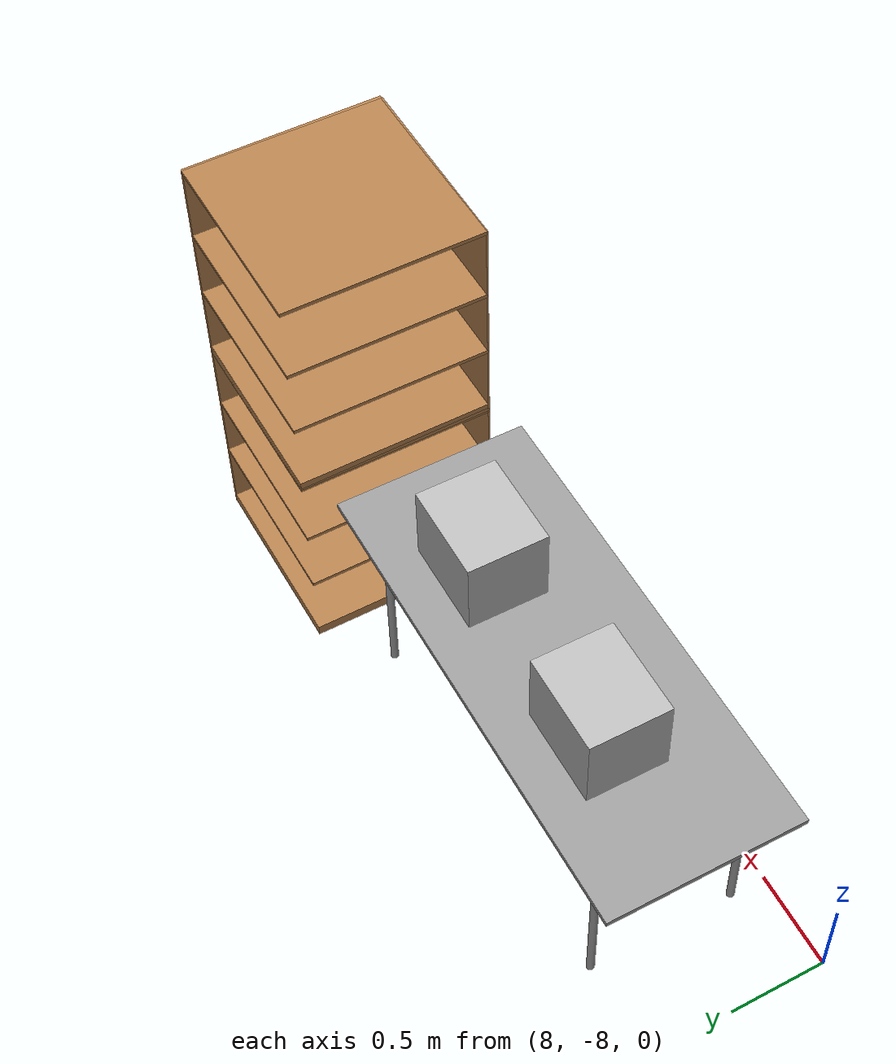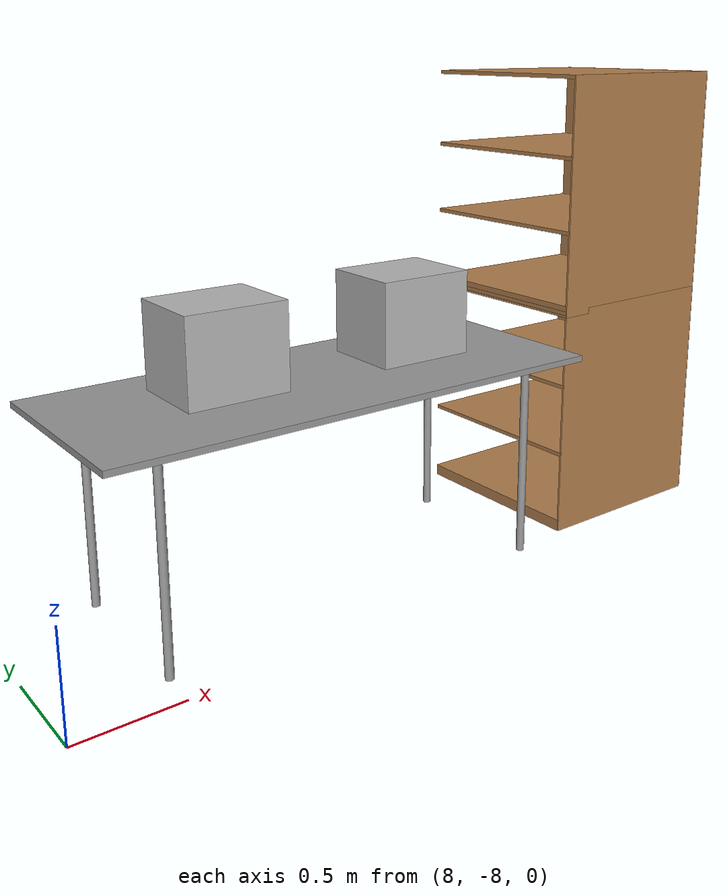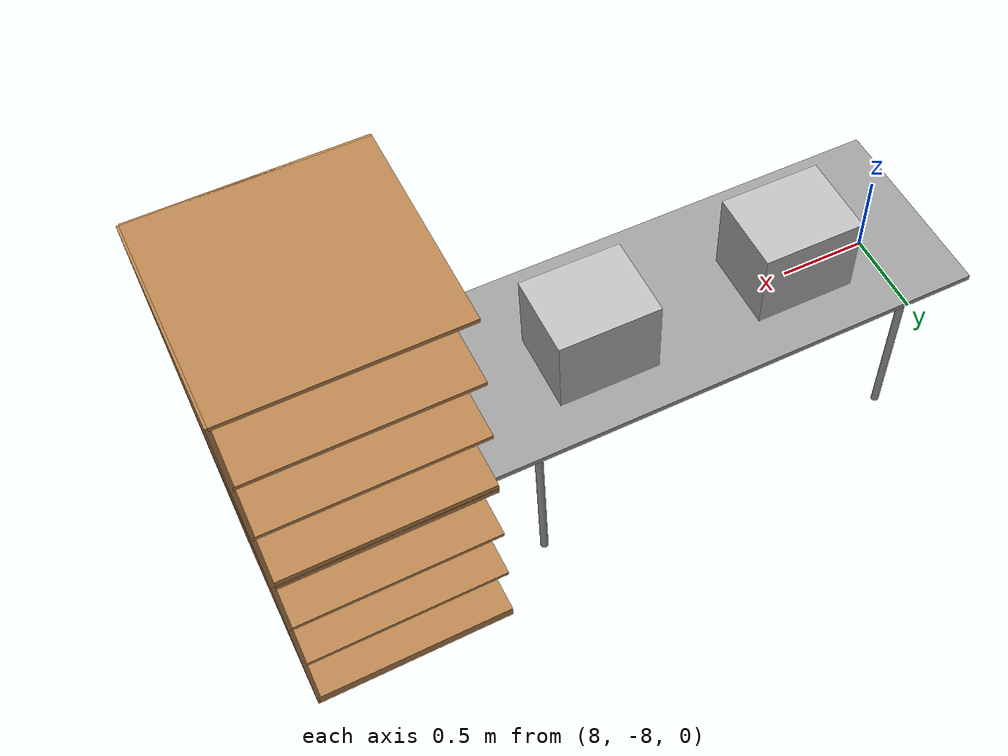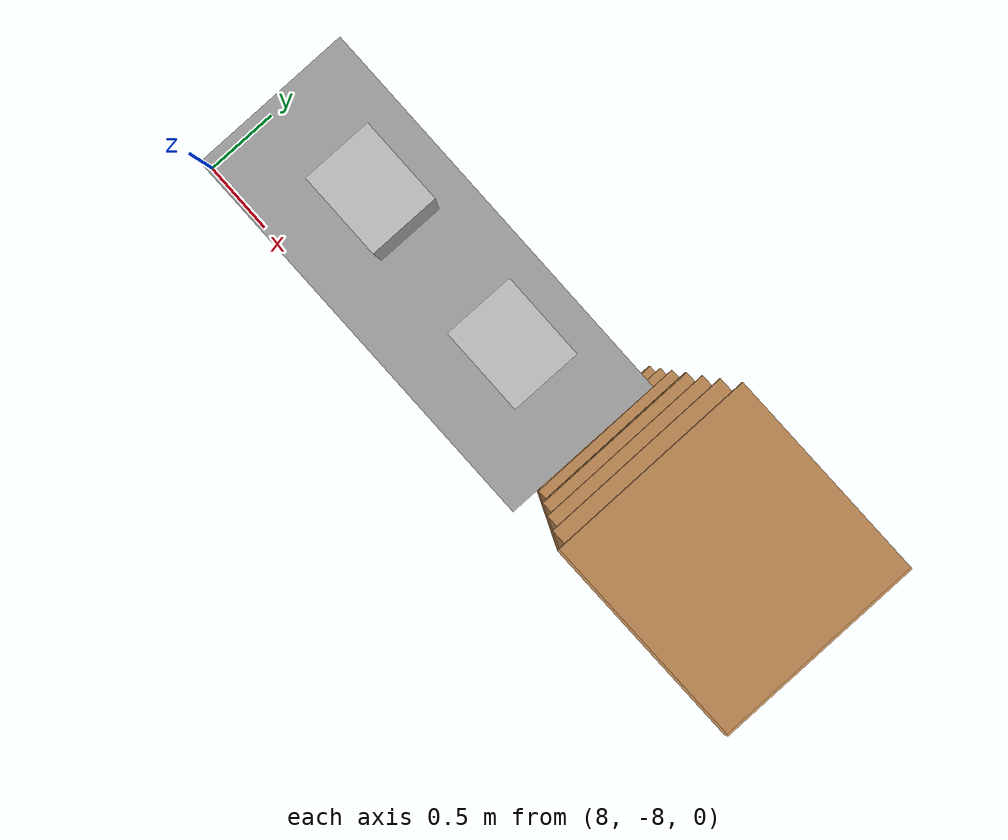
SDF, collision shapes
<sdf version="1.6">
 <model name="erica">
  <model name="3d_printer_0">
   <link name="link">
    <inertial>
     <mass>1</mass>
     <inertia><ixx>1</ixx><ixy>0</ixy><ixz>0</ixz><iyy>1</iyy><iyz>0</iyz><izz>1</izz></inertia>
    </inertial>
    <visual name="visual">
     <geometry><mesh><uri>model://erica/elements/3d_printer/meshes/model.dae</uri></mesh></geometry>
     <material><shader type="vertex"><normal_map>__default__</normal_map></shader></material>
    </visual>
    <collision name="collision">
     <pose>0.27 0.21 0.21 0 -0 0</pose>
     <geometry><box><size>0.5 0.41 0.42</size></box></geometry>
     <surface>
      <friction>
       <ode><mu>1</mu><mu2>1</mu2><fdir1>0 0 0</fdir1><slip1>0</slip1><slip2>0</slip2></ode>
       <torsional>
        <coefficient>1</coefficient>
        <patch_radius>0</patch_radius>
        <surface_radius>0</surface_radius>
        <use_patch_radius>1</use_patch_radius>
        <ode><slip>0</slip></ode>
       </torsional>
      </friction>
      <bounce><restitution_coefficient>0</restitution_coefficient><threshold>1e+06</threshold></bounce>
      <contact>
       <collide_without_contact>0</collide_without_contact>
       <collide_without_contact_bitmask>1</collide_without_contact_bitmask>
       <collide_bitmask>1</collide_bitmask>
       <ode>
        <soft_cfm>0</soft_cfm>
        <soft_erp>0.2</soft_erp>
        <kp>1e+13</kp>
        <kd>1</kd>
        <max_vel>0.01</max_vel>
        <min_depth>0</min_depth>
       </ode>
       <bullet>
        <split_impulse>1</split_impulse>
        <split_impulse_penetration_threshold>-0.01</split_impulse_penetration_threshold>
        <soft_cfm>0</soft_cfm>
        <soft_erp>0.2</soft_erp>
        <kp>1e+13</kp>
        <kd>1</kd>
       </bullet>
      </contact>
     </surface>
    </collision>
   </link>
   <static>1</static>
   <pose>10.3262 -7.13985 1.01878 0 -0 3.13886</pose>
  </model>
  <model name="3d_printer_0_clone">
   <link name="link">
    <inertial>
     <mass>1</mass>
     <inertia><ixx>1</ixx><ixy>0</ixy><ixz>0</ixz><iyy>1</iyy><iyz>0</iyz><izz>1</izz></inertia>
    </inertial>
    <visual name="visual">
     <geometry><mesh><uri>model://erica/elements/3d_printer/meshes/model.dae</uri></mesh></geometry>
     <material><shader type="vertex"><normal_map>__default__</normal_map></shader></material>
    </visual>
    <collision name="collision">
     <pose>0.27 0.21 0.21 0 -0 0</pose>
     <geometry><box><size>0.5 0.41 0.42</size></box></geometry>
     <surface>
      <friction>
       <ode><mu>1</mu><mu2>1</mu2><fdir1>0 0 0</fdir1><slip1>0</slip1><slip2>0</slip2></ode>
       <torsional>
        <coefficient>1</coefficient>
        <patch_radius>0</patch_radius>
        <surface_radius>0</surface_radius>
        <use_patch_radius>1</use_patch_radius>
        <ode><slip>0</slip></ode>
       </torsional>
      </friction>
      <bounce><restitution_coefficient>0</restitution_coefficient><threshold>1e+06</threshold></bounce>
      <contact>
       <collide_without_contact>0</collide_without_contact>
       <collide_without_contact_bitmask>1</collide_without_contact_bitmask>
       <collide_bitmask>1</collide_bitmask>
       <ode>
        <soft_cfm>0</soft_cfm>
        <soft_erp>0.2</soft_erp>
        <kp>1e+13</kp>
        <kd>1</kd>
        <max_vel>0.01</max_vel>
        <min_depth>0</min_depth>
       </ode>
       <bullet>
        <split_impulse>1</split_impulse>
        <split_impulse_penetration_threshold>-0.01</split_impulse_penetration_threshold>
        <soft_cfm>0</soft_cfm>
        <soft_erp>0.2</soft_erp>
        <kp>1e+13</kp>
        <kd>1</kd>
       </bullet>
      </contact>
     </surface>
    </collision>
   </link>
   <static>1</static>
   <pose>9.29256 -7.14981 1.01878 0 -0 3.13886</pose>
  </model>
  <model name="h_bookshelf">
   <link name="link">
    <pose>-1.78639 -0.153003 0 0 -0 0</pose>
    <inertial>
     <mass>1</mass>
     <inertia><ixx>1</ixx><ixy>0</ixy><ixz>0</ixz><iyy>1</iyy><iyz>0</iyz><izz>1</izz></inertia>
    </inertial>
    <visual name="ModelPreview_1::link::visual_10">
     <pose>0 0 0.8 0 -0 0</pose>
     <geometry><box><size>1 1 0.02</size></box></geometry>
     <material>
      <script><uri>file://media/materials/scripts/gazebo.material</uri><name>Gazebo/Wood</name></script>
      <ambient>1 1 1 1</ambient>
      <diffuse>1 1 1 1</diffuse>
      <specular>0.2 0.2 0.2 1</specular>
      <emissive>0 0 0 1</emissive>
      <shader type="vertex"><normal_map>__default__</normal_map></shader>
     </material>
    </visual>
    <visual name="visual1">
     <pose>0 0.5 0.6 0 -0 0</pose>
     <geometry><box><size>1 0.01 1.2</size></box></geometry>
     <material>
      <script><uri>file://media/materials/scripts/gazebo.material</uri><name>Gazebo/Wood</name></script>
      <ambient>1 1 1 1</ambient>
      <diffuse>1 1 1 1</diffuse>
      <specular>0.2 0.2 0.2 1</specular>
      <emissive>0 0 0 1</emissive>
      <shader type="vertex"><normal_map>__default__</normal_map></shader>
     </material>
    </visual>
    <visual name="visual3">
     <pose>-0.5 0 0.6 0 -0 0</pose>
     <geometry><box><size>0.02 1 1.2</size></box></geometry>
     <material>
      <script><uri>file://media/materials/scripts/gazebo.material</uri><name>Gazebo/Wood</name></script>
      <ambient>1 1 1 1</ambient>
      <diffuse>1 1 1 1</diffuse>
      <specular>0.2 0.2 0.2 1</specular>
      <emissive>0 0 0 1</emissive>
      <shader type="vertex"><normal_map>__default__</normal_map></shader>
     </material>
    </visual>
    <visual name="visual5">
     <pose>0 0 1.19 0 -0 0</pose>
     <geometry><box><size>1 1 0.02</size></box></geometry>
     <material>
      <script><uri>file://media/materials/scripts/gazebo.material</uri><name>Gazebo/Wood</name></script>
      <ambient>1 1 1 1</ambient>
      <diffuse>1 1 1 1</diffuse>
      <specular>0.2 0.2 0.2 1</specular>
      <emissive>0 0 0 1</emissive>
      <shader type="vertex"><normal_map>__default__</normal_map></shader>
     </material>
    </visual>
    <visual name="visual4">
     <pose>0 0 0.03 0 -0 0</pose>
     <geometry><box><size>1 1 0.06</size></box></geometry>
     <material>
      <script><uri>file://media/materials/scripts/gazebo.material</uri><name>Gazebo/Wood</name></script>
      <ambient>1 1 1 1</ambient>
      <diffuse>1 1 1 1</diffuse>
      <specular>0.2 0.2 0.2 1</specular>
      <emissive>0 0 0 1</emissive>
      <shader type="vertex"><normal_map>__default__</normal_map></shader>
     </material>
    </visual>
    <visual name="visual6">
     <pose>0 0 0.43 0 -0 0</pose>
     <geometry><box><size>1 1 0.02</size></box></geometry>
     <material>
      <script><uri>file://media/materials/scripts/gazebo.material</uri><name>Gazebo/Wood</name></script>
      <ambient>1 1 1 1</ambient>
      <diffuse>1 1 1 1</diffuse>
      <specular>0.2 0.2 0.2 1</specular>
      <emissive>0 0 0 1</emissive>
      <shader type="vertex"><normal_map>__default__</normal_map></shader>
     </material>
    </visual>
    <visual name="visual7">
     <pose>0 0 0.8 0 -0 0</pose>
     <geometry><box><size>1 1 0.02</size></box></geometry>
     <material>
      <script><uri>file://media/materials/scripts/gazebo.material</uri><name>Gazebo/Wood</name></script>
      <ambient>1 1 1 1</ambient>
      <diffuse>1 1 1 1</diffuse>
      <specular>0.2 0.2 0.2 1</specular>
      <emissive>0 0 0 1</emissive>
      <shader type="vertex"><normal_map>__default__</normal_map></shader>
     </material>
    </visual>
    <collision name="high_shelf">
     <pose>0 0 0.8 0 -0 0</pose>
     <geometry><box><size>1 1 0.02</size></box></geometry>
     <surface>
      <friction>
       <ode><mu>1</mu><mu2>1</mu2><fdir1>0 0 0</fdir1><slip1>0</slip1><slip2>0</slip2></ode>
       <torsional>
        <coefficient>1</coefficient>
        <patch_radius>0</patch_radius>
        <surface_radius>0</surface_radius>
        <use_patch_radius>1</use_patch_radius>
        <ode><slip>0</slip></ode>
       </torsional>
      </friction>
      <bounce><restitution_coefficient>0</restitution_coefficient><threshold>1e+06</threshold></bounce>
      <contact>
       <collide_without_contact>0</collide_without_contact>
       <collide_without_contact_bitmask>1</collide_without_contact_bitmask>
       <collide_bitmask>1</collide_bitmask>
       <ode>
        <soft_cfm>0</soft_cfm>
        <soft_erp>0.2</soft_erp>
        <kp>1e+13</kp>
        <kd>1</kd>
        <max_vel>0.01</max_vel>
        <min_depth>0</min_depth>
       </ode>
       <bullet>
        <split_impulse>1</split_impulse>
        <split_impulse_penetration_threshold>-0.01</split_impulse_penetration_threshold>
        <soft_cfm>0</soft_cfm>
        <soft_erp>0.2</soft_erp>
        <kp>1e+13</kp>
        <kd>1</kd>
       </bullet>
      </contact>
     </surface>
    </collision>
    <collision name="low_shelf">
     <pose>0 0 0.43 0 -0 0</pose>
     <geometry><box><size>1 1 0.02</size></box></geometry>
     <surface>
      <friction>
       <ode><mu>1</mu><mu2>1</mu2><fdir1>0 0 0</fdir1><slip1>0</slip1><slip2>0</slip2></ode>
       <torsional>
        <coefficient>1</coefficient>
        <patch_radius>0</patch_radius>
        <surface_radius>0</surface_radius>
        <use_patch_radius>1</use_patch_radius>
        <ode><slip>0</slip></ode>
       </torsional>
      </friction>
      <bounce><restitution_coefficient>0</restitution_coefficient><threshold>1e+06</threshold></bounce>
      <contact>
       <collide_without_contact>0</collide_without_contact>
       <collide_without_contact_bitmask>1</collide_without_contact_bitmask>
       <collide_bitmask>1</collide_bitmask>
       <ode>
        <soft_cfm>0</soft_cfm>
        <soft_erp>0.2</soft_erp>
        <kp>1e+13</kp>
        <kd>1</kd>
        <max_vel>0.01</max_vel>
        <min_depth>0</min_depth>
       </ode>
       <bullet>
        <split_impulse>1</split_impulse>
        <split_impulse_penetration_threshold>-0.01</split_impulse_penetration_threshold>
        <soft_cfm>0</soft_cfm>
        <soft_erp>0.2</soft_erp>
        <kp>1e+13</kp>
        <kd>1</kd>
       </bullet>
      </contact>
     </surface>
    </collision>
    <collision name="back">
     <pose>0 0.5 0.6 0 -0 0</pose>
     <geometry><box><size>1 0.01 1.2</size></box></geometry>
     <surface>
      <friction>
       <ode><mu>1</mu><mu2>1</mu2><fdir1>0 0 0</fdir1><slip1>0</slip1><slip2>0</slip2></ode>
       <torsional>
        <coefficient>1</coefficient>
        <patch_radius>0</patch_radius>
        <surface_radius>0</surface_radius>
        <use_patch_radius>1</use_patch_radius>
        <ode><slip>0</slip></ode>
       </torsional>
      </friction>
      <bounce><restitution_coefficient>0</restitution_coefficient><threshold>1e+06</threshold></bounce>
      <contact>
       <collide_without_contact>0</collide_without_contact>
       <collide_without_contact_bitmask>1</collide_without_contact_bitmask>
       <collide_bitmask>1</collide_bitmask>
       <ode>
        <soft_cfm>0</soft_cfm>
        <soft_erp>0.2</soft_erp>
        <kp>1e+13</kp>
        <kd>1</kd>
        <max_vel>0.01</max_vel>
        <min_depth>0</min_depth>
       </ode>
       <bullet>
        <split_impulse>1</split_impulse>
        <split_impulse_penetration_threshold>-0.01</split_impulse_penetration_threshold>
        <soft_cfm>0</soft_cfm>
        <soft_erp>0.2</soft_erp>
        <kp>1e+13</kp>
        <kd>1</kd>
       </bullet>
      </contact>
     </surface>
    </collision>
    <collision name="right_side">
     <pose>-0.5 0 0.6 0 -0 0</pose>
     <geometry><box><size>0.02 1 1.2</size></box></geometry>
     <surface>
      <friction>
       <ode><mu>1</mu><mu2>1</mu2><fdir1>0 0 0</fdir1><slip1>0</slip1><slip2>0</slip2></ode>
       <torsional>
        <coefficient>1</coefficient>
        <patch_radius>0</patch_radius>
        <surface_radius>0</surface_radius>
        <use_patch_radius>1</use_patch_radius>
        <ode><slip>0</slip></ode>
       </torsional>
      </friction>
      <bounce><restitution_coefficient>0</restitution_coefficient><threshold>1e+06</threshold></bounce>
      <contact>
       <collide_without_contact>0</collide_without_contact>
       <collide_without_contact_bitmask>1</collide_without_contact_bitmask>
       <collide_bitmask>1</collide_bitmask>
       <ode>
        <soft_cfm>0</soft_cfm>
        <soft_erp>0.2</soft_erp>
        <kp>1e+13</kp>
        <kd>1</kd>
        <max_vel>0.01</max_vel>
        <min_depth>0</min_depth>
       </ode>
       <bullet>
        <split_impulse>1</split_impulse>
        <split_impulse_penetration_threshold>-0.01</split_impulse_penetration_threshold>
        <soft_cfm>0</soft_cfm>
        <soft_erp>0.2</soft_erp>
        <kp>1e+13</kp>
        <kd>1</kd>
       </bullet>
      </contact>
     </surface>
    </collision>
    <collision name="bottom">
     <pose>0 0 0.03 0 -0 0</pose>
     <geometry><box><size>1 1 0.06</size></box></geometry>
     <surface>
      <friction>
       <ode><mu>1</mu><mu2>1</mu2><fdir1>0 0 0</fdir1><slip1>0</slip1><slip2>0</slip2></ode>
       <torsional>
        <coefficient>1</coefficient>
        <patch_radius>0</patch_radius>
        <surface_radius>0</surface_radius>
        <use_patch_radius>1</use_patch_radius>
        <ode><slip>0</slip></ode>
       </torsional>
      </friction>
      <bounce><restitution_coefficient>0</restitution_coefficient><threshold>1e+06</threshold></bounce>
      <contact>
       <collide_without_contact>0</collide_without_contact>
       <collide_without_contact_bitmask>1</collide_without_contact_bitmask>
       <collide_bitmask>1</collide_bitmask>
       <ode>
        <soft_cfm>0</soft_cfm>
        <soft_erp>0.2</soft_erp>
        <kp>1e+13</kp>
        <kd>1</kd>
        <max_vel>0.01</max_vel>
        <min_depth>0</min_depth>
       </ode>
       <bullet>
        <split_impulse>1</split_impulse>
        <split_impulse_penetration_threshold>-0.01</split_impulse_penetration_threshold>
        <soft_cfm>0</soft_cfm>
        <soft_erp>0.2</soft_erp>
        <kp>1e+13</kp>
        <kd>1</kd>
       </bullet>
      </contact>
     </surface>
    </collision>
    <collision name="top">
     <pose>0 0 1.19 0 -0 0</pose>
     <geometry><box><size>1 1 0.02</size></box></geometry>
     <surface>
      <friction>
       <ode><mu>1</mu><mu2>1</mu2><fdir1>0 0 0</fdir1><slip1>0</slip1><slip2>0</slip2></ode>
       <torsional>
        <coefficient>1</coefficient>
        <patch_radius>0</patch_radius>
        <surface_radius>0</surface_radius>
        <use_patch_radius>1</use_patch_radius>
        <ode><slip>0</slip></ode>
       </torsional>
      </friction>
      <bounce><restitution_coefficient>0</restitution_coefficient><threshold>1e+06</threshold></bounce>
      <contact>
       <collide_without_contact>0</collide_without_contact>
       <collide_without_contact_bitmask>1</collide_without_contact_bitmask>
       <collide_bitmask>1</collide_bitmask>
       <ode>
        <soft_cfm>0</soft_cfm>
        <soft_erp>0.2</soft_erp>
        <kp>1e+13</kp>
        <kd>1</kd>
        <max_vel>0.01</max_vel>
        <min_depth>0</min_depth>
       </ode>
       <bullet>
        <split_impulse>1</split_impulse>
        <split_impulse_penetration_threshold>-0.01</split_impulse_penetration_threshold>
        <soft_cfm>0</soft_cfm>
        <soft_erp>0.2</soft_erp>
        <kp>1e+13</kp>
        <kd>1</kd>
       </bullet>
      </contact>
     </surface>
    </collision>
   </link>
   <link name="link_clone">
    <pose>-1.78639 -0.153003 1.16821 0 -0 0</pose>
    <inertial>
     <mass>1</mass>
     <inertia><ixx>1</ixx><ixy>0</ixy><ixz>0</ixz><iyy>1</iyy><iyz>0</iyz><izz>1</izz></inertia>
    </inertial>
    <visual name="visual1">
     <pose>0 0.5 0.6 0 -0 0</pose>
     <geometry><box><size>1 0.01 1.2</size></box></geometry>
     <material>
      <script><uri>file://media/materials/scripts/gazebo.material</uri><name>Gazebo/Wood</name></script>
      <ambient>1 1 1 1</ambient>
      <diffuse>1 1 1 1</diffuse>
      <specular>0.2 0.2 0.2 1</specular>
      <emissive>0 0 0 1</emissive>
      <shader type="vertex"><normal_map>__default__</normal_map></shader>
     </material>
    </visual>
    <visual name="visual4">
     <pose>0 0 0.03 0 -0 0</pose>
     <geometry><box><size>1 1 0.06</size></box></geometry>
     <material>
      <script><uri>file://media/materials/scripts/gazebo.material</uri><name>Gazebo/Wood</name></script>
      <ambient>1 1 1 1</ambient>
      <diffuse>1 1 1 1</diffuse>
      <specular>0.2 0.2 0.2 1</specular>
      <emissive>0 0 0 1</emissive>
      <shader type="vertex"><normal_map>__default__</normal_map></shader>
     </material>
    </visual>
    <visual name="visual_10">
     <pose>0 0 0.8 0 -0 0</pose>
     <geometry><box><size>1 1 0.02</size></box></geometry>
     <material>
      <script><uri>file://media/materials/scripts/gazebo.material</uri><name>Gazebo/Wood</name></script>
      <ambient>1 1 1 1</ambient>
      <diffuse>1 1 1 1</diffuse>
      <specular>0.2 0.2 0.2 1</specular>
      <emissive>0 0 0 1</emissive>
      <shader type="vertex"><normal_map>__default__</normal_map></shader>
     </material>
    </visual>
    <visual name="visual5">
     <pose>0 0 1.19 0 -0 0</pose>
     <geometry><box><size>1 1 0.02</size></box></geometry>
     <material>
      <script><uri>file://media/materials/scripts/gazebo.material</uri><name>Gazebo/Wood</name></script>
      <ambient>1 1 1 1</ambient>
      <diffuse>1 1 1 1</diffuse>
      <specular>0.2 0.2 0.2 1</specular>
      <emissive>0 0 0 1</emissive>
      <shader type="vertex"><normal_map>__default__</normal_map></shader>
     </material>
    </visual>
    <visual name="visual7">
     <pose>0 0 0.8 0 -0 0</pose>
     <geometry><box><size>1 1 0.02</size></box></geometry>
     <material>
      <script><uri>file://media/materials/scripts/gazebo.material</uri><name>Gazebo/Wood</name></script>
      <ambient>1 1 1 1</ambient>
      <diffuse>1 1 1 1</diffuse>
      <specular>0.2 0.2 0.2 1</specular>
      <emissive>0 0 0 1</emissive>
      <shader type="vertex"><normal_map>__default__</normal_map></shader>
     </material>
    </visual>
    <visual name="visual6">
     <pose>0 0 0.43 0 -0 0</pose>
     <geometry><box><size>1 1 0.02</size></box></geometry>
     <material>
      <script><uri>file://media/materials/scripts/gazebo.material</uri><name>Gazebo/Wood</name></script>
      <ambient>1 1 1 1</ambient>
      <diffuse>1 1 1 1</diffuse>
      <specular>0.2 0.2 0.2 1</specular>
      <emissive>0 0 0 1</emissive>
      <shader type="vertex"><normal_map>__default__</normal_map></shader>
     </material>
    </visual>
    <visual name="visual3">
     <pose>-0.5 0 0.6 0 -0 0</pose>
     <geometry><box><size>0.02 1 1.2</size></box></geometry>
     <material>
      <script><uri>file://media/materials/scripts/gazebo.material</uri><name>Gazebo/Wood</name></script>
      <ambient>1 1 1 1</ambient>
      <diffuse>1 1 1 1</diffuse>
      <specular>0.2 0.2 0.2 1</specular>
      <emissive>0 0 0 1</emissive>
      <shader type="vertex"><normal_map>__default__</normal_map></shader>
     </material>
    </visual>
    <collision name="back">
     <pose>0 0.5 0.6 0 -0 0</pose>
     <geometry><box><size>1 0.01 1.2</size></box></geometry>
     <surface>
      <friction>
       <ode><mu>1</mu><mu2>1</mu2><fdir1>0 0 0</fdir1><slip1>0</slip1><slip2>0</slip2></ode>
       <torsional>
        <coefficient>1</coefficient>
        <patch_radius>0</patch_radius>
        <surface_radius>0</surface_radius>
        <use_patch_radius>1</use_patch_radius>
        <ode><slip>0</slip></ode>
       </torsional>
      </friction>
      <bounce><restitution_coefficient>0</restitution_coefficient><threshold>1e+06</threshold></bounce>
      <contact>
       <collide_without_contact>0</collide_without_contact>
       <collide_without_contact_bitmask>1</collide_without_contact_bitmask>
       <collide_bitmask>1</collide_bitmask>
       <ode>
        <soft_cfm>0</soft_cfm>
        <soft_erp>0.2</soft_erp>
        <kp>1e+13</kp>
        <kd>1</kd>
        <max_vel>0.01</max_vel>
        <min_depth>0</min_depth>
       </ode>
       <bullet>
        <split_impulse>1</split_impulse>
        <split_impulse_penetration_threshold>-0.01</split_impulse_penetration_threshold>
        <soft_cfm>0</soft_cfm>
        <soft_erp>0.2</soft_erp>
        <kp>1e+13</kp>
        <kd>1</kd>
       </bullet>
      </contact>
     </surface>
    </collision>
    <collision name="high_shelf">
     <pose>0 0 0.8 0 -0 0</pose>
     <geometry><box><size>1 1 0.02</size></box></geometry>
     <surface>
      <friction>
       <ode><mu>1</mu><mu2>1</mu2><fdir1>0 0 0</fdir1><slip1>0</slip1><slip2>0</slip2></ode>
       <torsional>
        <coefficient>1</coefficient>
        <patch_radius>0</patch_radius>
        <surface_radius>0</surface_radius>
        <use_patch_radius>1</use_patch_radius>
        <ode><slip>0</slip></ode>
       </torsional>
      </friction>
      <bounce><restitution_coefficient>0</restitution_coefficient><threshold>1e+06</threshold></bounce>
      <contact>
       <collide_without_contact>0</collide_without_contact>
       <collide_without_contact_bitmask>1</collide_without_contact_bitmask>
       <collide_bitmask>1</collide_bitmask>
       <ode>
        <soft_cfm>0</soft_cfm>
        <soft_erp>0.2</soft_erp>
        <kp>1e+13</kp>
        <kd>1</kd>
        <max_vel>0.01</max_vel>
        <min_depth>0</min_depth>
       </ode>
       <bullet>
        <split_impulse>1</split_impulse>
        <split_impulse_penetration_threshold>-0.01</split_impulse_penetration_threshold>
        <soft_cfm>0</soft_cfm>
        <soft_erp>0.2</soft_erp>
        <kp>1e+13</kp>
        <kd>1</kd>
       </bullet>
      </contact>
     </surface>
    </collision>
    <collision name="top">
     <pose>0 0 1.19 0 -0 0</pose>
     <geometry><box><size>1 1 0.02</size></box></geometry>
     <surface>
      <friction>
       <ode><mu>1</mu><mu2>1</mu2><fdir1>0 0 0</fdir1><slip1>0</slip1><slip2>0</slip2></ode>
       <torsional>
        <coefficient>1</coefficient>
        <patch_radius>0</patch_radius>
        <surface_radius>0</surface_radius>
        <use_patch_radius>1</use_patch_radius>
        <ode><slip>0</slip></ode>
       </torsional>
      </friction>
      <bounce><restitution_coefficient>0</restitution_coefficient><threshold>1e+06</threshold></bounce>
      <contact>
       <collide_without_contact>0</collide_without_contact>
       <collide_without_contact_bitmask>1</collide_without_contact_bitmask>
       <collide_bitmask>1</collide_bitmask>
       <ode>
        <soft_cfm>0</soft_cfm>
        <soft_erp>0.2</soft_erp>
        <kp>1e+13</kp>
        <kd>1</kd>
        <max_vel>0.01</max_vel>
        <min_depth>0</min_depth>
       </ode>
       <bullet>
        <split_impulse>1</split_impulse>
        <split_impulse_penetration_threshold>-0.01</split_impulse_penetration_threshold>
        <soft_cfm>0</soft_cfm>
        <soft_erp>0.2</soft_erp>
        <kp>1e+13</kp>
        <kd>1</kd>
       </bullet>
      </contact>
     </surface>
    </collision>
    <collision name="low_shelf">
     <pose>0 0 0.43 0 -0 0</pose>
     <geometry><box><size>1 1 0.02</size></box></geometry>
     <surface>
      <friction>
       <ode><mu>1</mu><mu2>1</mu2><fdir1>0 0 0</fdir1><slip1>0</slip1><slip2>0</slip2></ode>
       <torsional>
        <coefficient>1</coefficient>
        <patch_radius>0</patch_radius>
        <surface_radius>0</surface_radius>
        <use_patch_radius>1</use_patch_radius>
        <ode><slip>0</slip></ode>
       </torsional>
      </friction>
      <bounce><restitution_coefficient>0</restitution_coefficient><threshold>1e+06</threshold></bounce>
      <contact>
       <collide_without_contact>0</collide_without_contact>
       <collide_without_contact_bitmask>1</collide_without_contact_bitmask>
       <collide_bitmask>1</collide_bitmask>
       <ode>
        <soft_cfm>0</soft_cfm>
        <soft_erp>0.2</soft_erp>
        <kp>1e+13</kp>
        <kd>1</kd>
        <max_vel>0.01</max_vel>
        <min_depth>0</min_depth>
       </ode>
       <bullet>
        <split_impulse>1</split_impulse>
        <split_impulse_penetration_threshold>-0.01</split_impulse_penetration_threshold>
        <soft_cfm>0</soft_cfm>
        <soft_erp>0.2</soft_erp>
        <kp>1e+13</kp>
        <kd>1</kd>
       </bullet>
      </contact>
     </surface>
    </collision>
    <collision name="right_side">
     <pose>-0.5 0 0.6 0 -0 0</pose>
     <geometry><box><size>0.02 1 1.2</size></box></geometry>
     <surface>
      <friction>
       <ode><mu>1</mu><mu2>1</mu2><fdir1>0 0 0</fdir1><slip1>0</slip1><slip2>0</slip2></ode>
       <torsional>
        <coefficient>1</coefficient>
        <patch_radius>0</patch_radius>
        <surface_radius>0</surface_radius>
        <use_patch_radius>1</use_patch_radius>
        <ode><slip>0</slip></ode>
       </torsional>
      </friction>
      <bounce><restitution_coefficient>0</restitution_coefficient><threshold>1e+06</threshold></bounce>
      <contact>
       <collide_without_contact>0</collide_without_contact>
       <collide_without_contact_bitmask>1</collide_without_contact_bitmask>
       <collide_bitmask>1</collide_bitmask>
       <ode>
        <soft_cfm>0</soft_cfm>
        <soft_erp>0.2</soft_erp>
        <kp>1e+13</kp>
        <kd>1</kd>
        <max_vel>0.01</max_vel>
        <min_depth>0</min_depth>
       </ode>
       <bullet>
        <split_impulse>1</split_impulse>
        <split_impulse_penetration_threshold>-0.01</split_impulse_penetration_threshold>
        <soft_cfm>0</soft_cfm>
        <soft_erp>0.2</soft_erp>
        <kp>1e+13</kp>
        <kd>1</kd>
       </bullet>
      </contact>
     </surface>
    </collision>
    <collision name="bottom">
     <pose>0 0 0.03 0 -0 0</pose>
     <geometry><box><size>1 1 0.06</size></box></geometry>
     <surface>
      <friction>
       <ode><mu>1</mu><mu2>1</mu2><fdir1>0 0 0</fdir1><slip1>0</slip1><slip2>0</slip2></ode>
       <torsional>
        <coefficient>1</coefficient>
        <patch_radius>0</patch_radius>
        <surface_radius>0</surface_radius>
        <use_patch_radius>1</use_patch_radius>
        <ode><slip>0</slip></ode>
       </torsional>
      </friction>
      <bounce><restitution_coefficient>0</restitution_coefficient><threshold>1e+06</threshold></bounce>
      <contact>
       <collide_without_contact>0</collide_without_contact>
       <collide_without_contact_bitmask>1</collide_without_contact_bitmask>
       <collide_bitmask>1</collide_bitmask>
       <ode>
        <soft_cfm>0</soft_cfm>
        <soft_erp>0.2</soft_erp>
        <kp>1e+13</kp>
        <kd>1</kd>
        <max_vel>0.01</max_vel>
        <min_depth>0</min_depth>
       </ode>
       <bullet>
        <split_impulse>1</split_impulse>
        <split_impulse_penetration_threshold>-0.01</split_impulse_penetration_threshold>
        <soft_cfm>0</soft_cfm>
        <soft_erp>0.2</soft_erp>
        <kp>1e+13</kp>
        <kd>1</kd>
       </bullet>
      </contact>
     </surface>
    </collision>
   </link>
   <static>1</static>
   <pose>9.48549 -7.44015 0 0 0 -3.1343</pose>
  </model>
  <model name="h_table2">
   <link name="link">
    <inertial>
     <inertia><ixx>1</ixx><ixy>0</ixy><ixz>0</ixz><iyy>1</iyy><iyz>0</iyz><izz>1</izz></inertia>
     <mass>1</mass>
    </inertial>
    <visual name="back_left_leg">
     <pose>-0.98 0.38 0.5 0 -0 0</pose>
     <geometry><cylinder><radius>0.02</radius><length>1</length></cylinder></geometry>
     <material>
      <script><uri>file://media/materials/scripts/gazebo.material</uri><name>Gazebo/Grey</name></script>
      <ambient>0.3 0.3 0.3 1</ambient>
      <diffuse>0.7 0.7 0.7 1</diffuse>
      <specular>0.01 0.01 0.01 1</specular>
      <emissive>0 0 0 1</emissive>
      <shader type="vertex"><normal_map>__default__</normal_map></shader>
     </material>
    </visual>
    <visual name="front_right_leg">
     <pose>0.98 -0.38 0.5 0 -0 0</pose>
     <geometry><cylinder><radius>0.02</radius><length>1</length></cylinder></geometry>
     <material>
      <script><uri>file://media/materials/scripts/gazebo.material</uri><name>Gazebo/Grey</name></script>
      <ambient>0.3 0.3 0.3 1</ambient>
      <diffuse>0.7 0.7 0.7 1</diffuse>
      <specular>0.01 0.01 0.01 1</specular>
      <emissive>0 0 0 1</emissive>
      <shader type="vertex"><normal_map>__default__</normal_map></shader>
     </material>
    </visual>
    <visual name="front_left_leg">
     <pose>0.98 0.38 0.5 0 -0 0</pose>
     <geometry><cylinder><radius>0.02</radius><length>1</length></cylinder></geometry>
     <material>
      <script><uri>file://media/materials/scripts/gazebo.material</uri><name>Gazebo/Grey</name></script>
      <ambient>0.3 0.3 0.3 1</ambient>
      <diffuse>0.7 0.7 0.7 1</diffuse>
      <specular>0.01 0.01 0.01 1</specular>
      <emissive>0 0 0 1</emissive>
      <shader type="vertex"><normal_map>__default__</normal_map></shader>
     </material>
    </visual>
    <visual name="back_right_leg">
     <pose>-0.98 -0.38 0.5 0 -0 0</pose>
     <geometry><cylinder><radius>0.02</radius><length>1</length></cylinder></geometry>
     <material>
      <script><uri>file://media/materials/scripts/gazebo.material</uri><name>Gazebo/Grey</name></script>
      <ambient>0.3 0.3 0.3 1</ambient>
      <diffuse>0.7 0.7 0.7 1</diffuse>
      <specular>0.01 0.01 0.01 1</specular>
      <emissive>0 0 0 1</emissive>
      <shader type="vertex"><normal_map>__default__</normal_map></shader>
     </material>
    </visual>
    <visual name="visual1">
     <pose>0 0 1 0 -0 0</pose>
     <geometry><box><size>2.5 1 0.04</size></box></geometry>
     <material>
      <script><uri>file://media/materials/scripts/gazebo.material</uri><name>Gazebo/Wood</name></script>
      <ambient>1 1 1 1</ambient>
      <diffuse>1 1 1 1</diffuse>
      <specular>0.2 0.2 0.2 1</specular>
      <emissive>0 0 0 1</emissive>
      <shader type="vertex"><normal_map>__default__</normal_map></shader>
     </material>
    </visual>
    <collision name="back_left_leg">
     <pose>-0.98 0.38 0.5 0 -0 0</pose>
     <geometry><cylinder><radius>0.02</radius><length>1</length></cylinder></geometry>
     <surface>
      <friction>
       <ode><mu>1</mu><mu2>1</mu2><fdir1>0 0 0</fdir1><slip1>0</slip1><slip2>0</slip2></ode>
       <torsional>
        <coefficient>1</coefficient>
        <patch_radius>0</patch_radius>
        <surface_radius>0</surface_radius>
        <use_patch_radius>1</use_patch_radius>
        <ode><slip>0</slip></ode>
       </torsional>
      </friction>
      <bounce><restitution_coefficient>0</restitution_coefficient><threshold>1e+06</threshold></bounce>
      <contact>
       <collide_without_contact>0</collide_without_contact>
       <collide_without_contact_bitmask>1</collide_without_contact_bitmask>
       <collide_bitmask>1</collide_bitmask>
       <ode>
        <soft_cfm>0</soft_cfm>
        <soft_erp>0.2</soft_erp>
        <kp>1e+13</kp>
        <kd>1</kd>
        <max_vel>0.01</max_vel>
        <min_depth>0</min_depth>
       </ode>
       <bullet>
        <split_impulse>1</split_impulse>
        <split_impulse_penetration_threshold>-0.01</split_impulse_penetration_threshold>
        <soft_cfm>0</soft_cfm>
        <soft_erp>0.2</soft_erp>
        <kp>1e+13</kp>
        <kd>1</kd>
       </bullet>
      </contact>
     </surface>
    </collision>
    <collision name="front_right_leg">
     <pose>0.98 -0.38 0.5 0 -0 0</pose>
     <geometry><cylinder><radius>0.02</radius><length>1</length></cylinder></geometry>
     <surface>
      <friction>
       <ode><mu>1</mu><mu2>1</mu2><fdir1>0 0 0</fdir1><slip1>0</slip1><slip2>0</slip2></ode>
       <torsional>
        <coefficient>1</coefficient>
        <patch_radius>0</patch_radius>
        <surface_radius>0</surface_radius>
        <use_patch_radius>1</use_patch_radius>
        <ode><slip>0</slip></ode>
       </torsional>
      </friction>
      <bounce><restitution_coefficient>0</restitution_coefficient><threshold>1e+06</threshold></bounce>
      <contact>
       <collide_without_contact>0</collide_without_contact>
       <collide_without_contact_bitmask>1</collide_without_contact_bitmask>
       <collide_bitmask>1</collide_bitmask>
       <ode>
        <soft_cfm>0</soft_cfm>
        <soft_erp>0.2</soft_erp>
        <kp>1e+13</kp>
        <kd>1</kd>
        <max_vel>0.01</max_vel>
        <min_depth>0</min_depth>
       </ode>
       <bullet>
        <split_impulse>1</split_impulse>
        <split_impulse_penetration_threshold>-0.01</split_impulse_penetration_threshold>
        <soft_cfm>0</soft_cfm>
        <soft_erp>0.2</soft_erp>
        <kp>1e+13</kp>
        <kd>1</kd>
       </bullet>
      </contact>
     </surface>
    </collision>
    <collision name="back_right_leg">
     <pose>-0.98 -0.38 0.5 0 -0 0</pose>
     <geometry><cylinder><radius>0.02</radius><length>1</length></cylinder></geometry>
     <surface>
      <friction>
       <ode><mu>1</mu><mu2>1</mu2><fdir1>0 0 0</fdir1><slip1>0</slip1><slip2>0</slip2></ode>
       <torsional>
        <coefficient>1</coefficient>
        <patch_radius>0</patch_radius>
        <surface_radius>0</surface_radius>
        <use_patch_radius>1</use_patch_radius>
        <ode><slip>0</slip></ode>
       </torsional>
      </friction>
      <bounce><restitution_coefficient>0</restitution_coefficient><threshold>1e+06</threshold></bounce>
      <contact>
       <collide_without_contact>0</collide_without_contact>
       <collide_without_contact_bitmask>1</collide_without_contact_bitmask>
       <collide_bitmask>1</collide_bitmask>
       <ode>
        <soft_cfm>0</soft_cfm>
        <soft_erp>0.2</soft_erp>
        <kp>1e+13</kp>
        <kd>1</kd>
        <max_vel>0.01</max_vel>
        <min_depth>0</min_depth>
       </ode>
       <bullet>
        <split_impulse>1</split_impulse>
        <split_impulse_penetration_threshold>-0.01</split_impulse_penetration_threshold>
        <soft_cfm>0</soft_cfm>
        <soft_erp>0.2</soft_erp>
        <kp>1e+13</kp>
        <kd>1</kd>
       </bullet>
      </contact>
     </surface>
    </collision>
    <collision name="front_left_leg">
     <pose>0.98 0.38 0.5 0 -0 0</pose>
     <geometry><cylinder><radius>0.02</radius><length>1</length></cylinder></geometry>
     <surface>
      <friction>
       <ode><mu>1</mu><mu2>1</mu2><fdir1>0 0 0</fdir1><slip1>0</slip1><slip2>0</slip2></ode>
       <torsional>
        <coefficient>1</coefficient>
        <patch_radius>0</patch_radius>
        <surface_radius>0</surface_radius>
        <use_patch_radius>1</use_patch_radius>
        <ode><slip>0</slip></ode>
       </torsional>
      </friction>
      <bounce><restitution_coefficient>0</restitution_coefficient><threshold>1e+06</threshold></bounce>
      <contact>
       <collide_without_contact>0</collide_without_contact>
       <collide_without_contact_bitmask>1</collide_without_contact_bitmask>
       <collide_bitmask>1</collide_bitmask>
       <ode>
        <soft_cfm>0</soft_cfm>
        <soft_erp>0.2</soft_erp>
        <kp>1e+13</kp>
        <kd>1</kd>
        <max_vel>0.01</max_vel>
        <min_depth>0</min_depth>
       </ode>
       <bullet>
        <split_impulse>1</split_impulse>
        <split_impulse_penetration_threshold>-0.01</split_impulse_penetration_threshold>
        <soft_cfm>0</soft_cfm>
        <soft_erp>0.2</soft_erp>
        <kp>1e+13</kp>
        <kd>1</kd>
       </bullet>
      </contact>
     </surface>
    </collision>
    <collision name="surface">
     <pose>0 0 1 0 -0 0</pose>
     <geometry><box><size>2.5 1 0.03</size></box></geometry>
     <surface>
      <friction>
       <ode><mu>0.6</mu><mu2>0.6</mu2><fdir1>0 0 0</fdir1><slip1>0</slip1><slip2>0</slip2></ode>
       <torsional>
        <coefficient>1</coefficient>
        <patch_radius>0</patch_radius>
        <surface_radius>0</surface_radius>
        <use_patch_radius>1</use_patch_radius>
        <ode><slip>0</slip></ode>
       </torsional>
      </friction>
      <bounce><restitution_coefficient>0</restitution_coefficient><threshold>1e+06</threshold></bounce>
      <contact>
       <collide_without_contact>0</collide_without_contact>
       <collide_without_contact_bitmask>1</collide_without_contact_bitmask>
       <collide_bitmask>1</collide_bitmask>
       <ode>
        <soft_cfm>0</soft_cfm>
        <soft_erp>0.2</soft_erp>
        <kp>1e+13</kp>
        <kd>1</kd>
        <max_vel>0.01</max_vel>
        <min_depth>0</min_depth>
       </ode>
       <bullet>
        <split_impulse>1</split_impulse>
        <split_impulse_penetration_threshold>-0.01</split_impulse_penetration_threshold>
        <soft_cfm>0</soft_cfm>
        <soft_erp>0.2</soft_erp>
        <kp>1e+13</kp>
        <kd>1</kd>
       </bullet>
      </contact>
     </surface>
    </collision>
   </link>
   <static>1</static>
   <pose>9.48582 -7.43581 0 0 -0 0</pose>
  </model>
  <static>1</static>
 </model>
</sdf>
